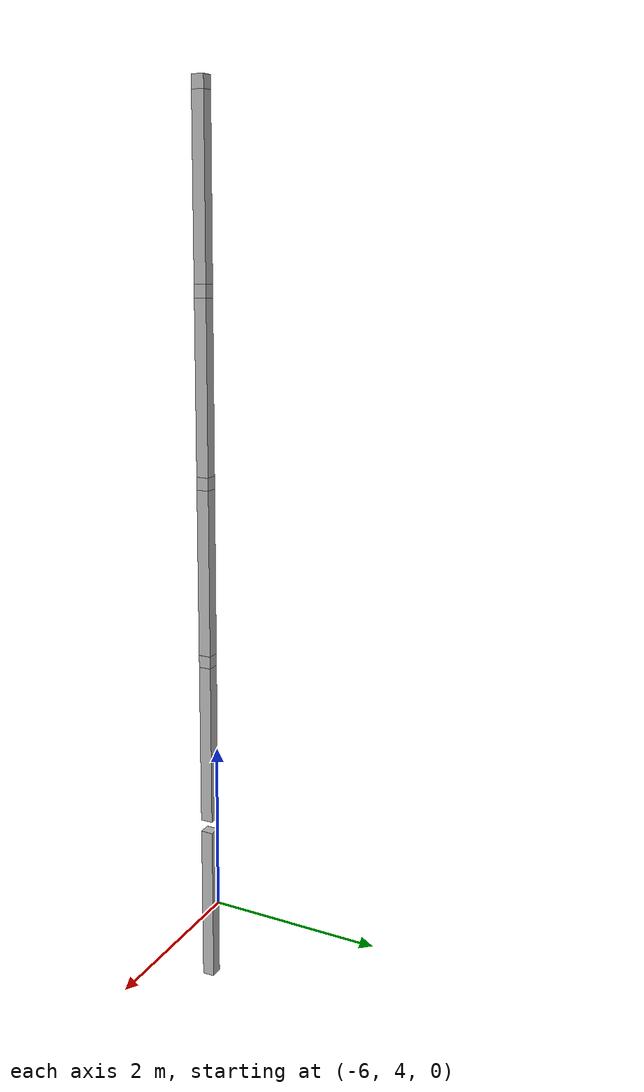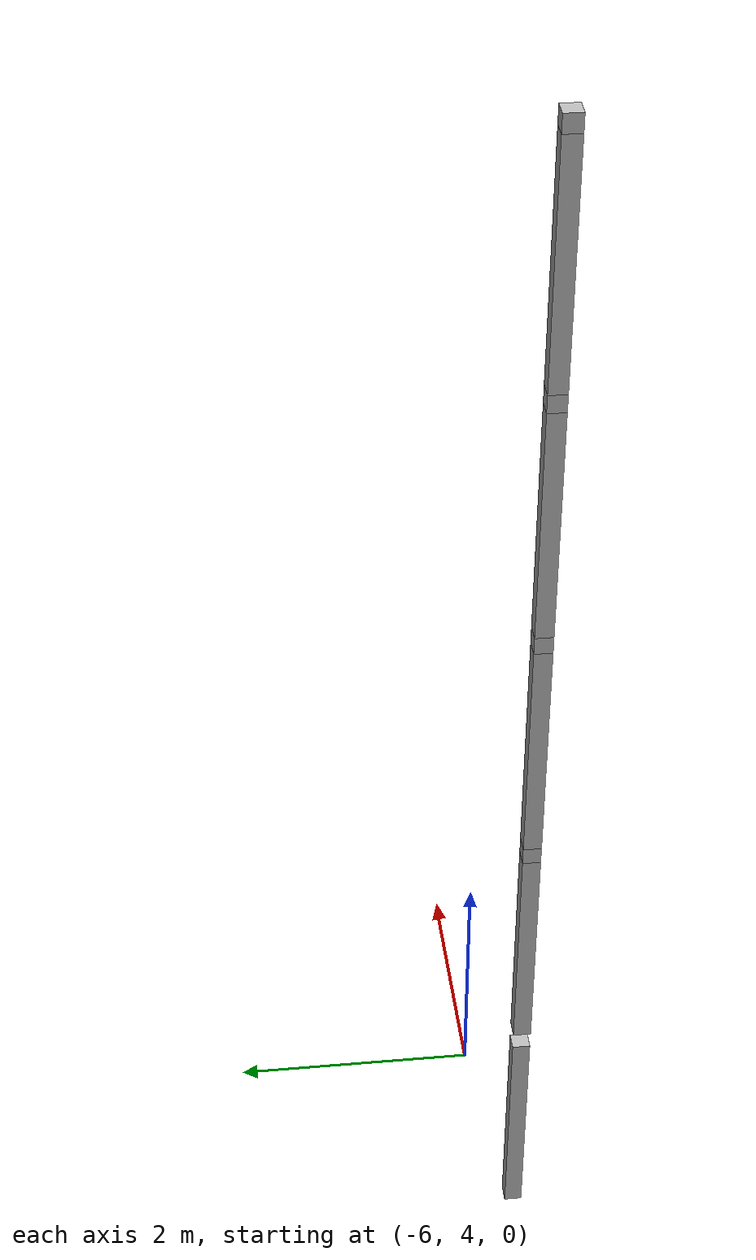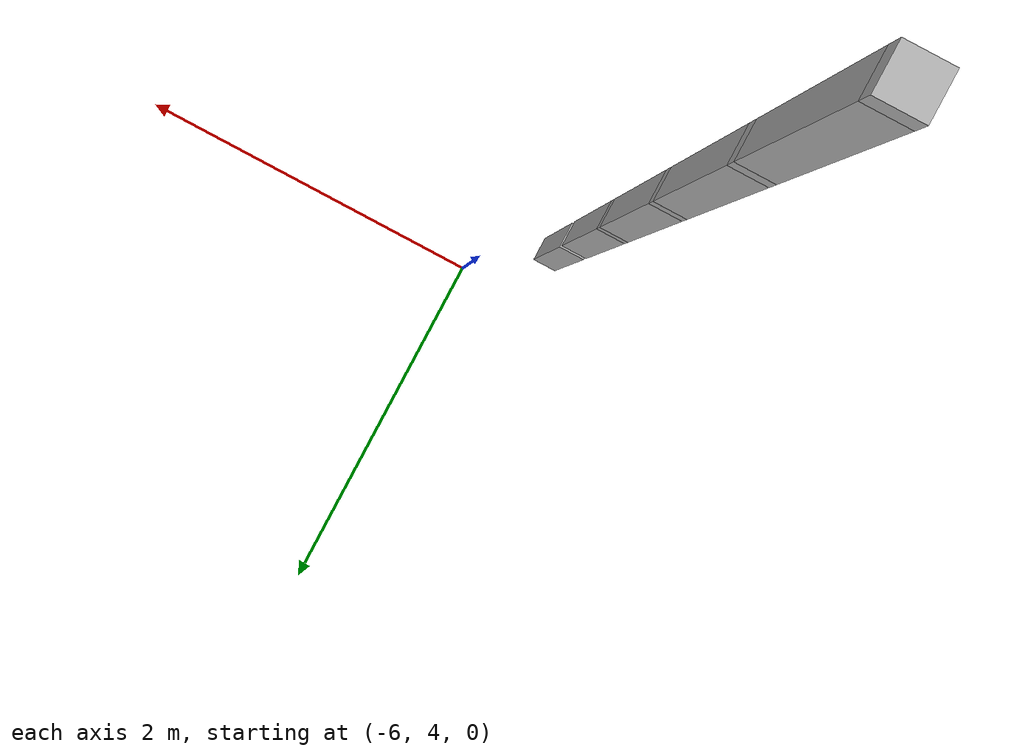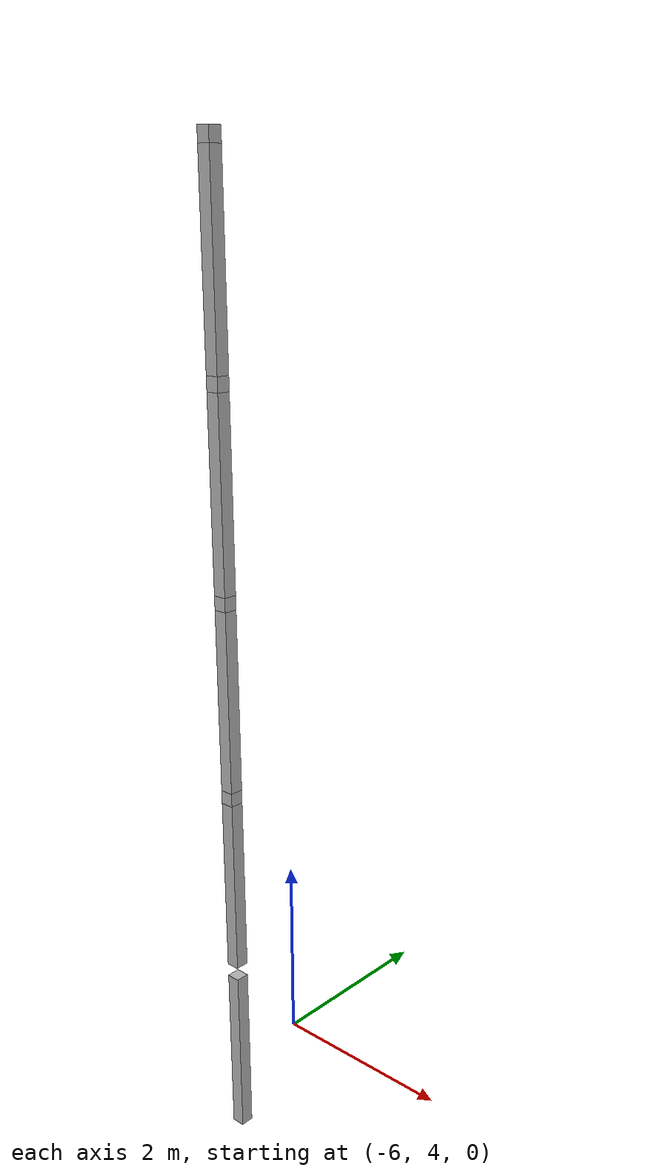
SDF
<sdf version="1.7">
 <world name="default">
  <model name="orthogonal_747_2.000.15_TS">
   <static>1</static>
   <link name="z_link_1_4_0">
    <inertial>
     <mass>1</mass>
     <inertia>
      <ixx>0.166667</ixx>
      <ixy>0</ixy>
      <ixz>0</ixz>
      <iyy>0.166667</iyy>
      <iyz>0</iyz>
      <izz>0.166667</izz>
     </inertia>
    </inertial>
    <pose>0 8.6 2.15 0 -0 0</pose>
    <visual name="visual_0">
     <laser_retro>1506</laser_retro>
     <geometry><box><size>0.15 1e-06 2</size></box></geometry>
     <material>
      <script><name>Gazebo/Grey</name><uri>file://media/materials/scripts/gazebo.material</uri></script>
      <shader type="pixel"><normal_map>__default__</normal_map></shader>
      <ambient>0.678 0.498 0.659 1</ambient>
      <diffuse>0.7 0.7 0.7 1</diffuse>
      <specular>0.01 0.01 0.01 1</specular>
      <emissive>0 0 0 1</emissive>
     </material>
     <pose>0 -0.075 0 0 -0 0</pose>
     <transparency>1</transparency>
    </visual>
    <visual name="visual_1">
     <laser_retro>1507</laser_retro>
     <geometry><box><size>0.15 1e-06 2</size></box></geometry>
     <material>
      <script><name>Gazebo/Grey</name><uri>file://media/materials/scripts/gazebo.material</uri></script>
      <shader type="pixel"><normal_map>__default__</normal_map></shader>
      <ambient>0.447 0.624 0.812 1</ambient>
      <diffuse>0.7 0.7 0.7 1</diffuse>
      <specular>0.01 0.01 0.01 1</specular>
      <emissive>0 0 0 1</emissive>
     </material>
     <pose>0 0.075 0 0 -0 0</pose>
     <transparency>1</transparency>
    </visual>
    <visual name="visual_2">
     <laser_retro>1508</laser_retro>
     <geometry><box><size>0.15 0.15 1e-06</size></box></geometry>
     <material>
      <script><name>Gazebo/Grey</name><uri>file://media/materials/scripts/gazebo.material</uri></script>
      <shader type="pixel"><normal_map>__default__</normal_map></shader>
      <ambient>0.988 0.686 0.243 1</ambient>
      <diffuse>0.7 0.7 0.7 1</diffuse>
      <specular>0.01 0.01 0.01 1</specular>
      <emissive>0 0 0 1</emissive>
     </material>
     <pose>0 0 -1 0 -0 0</pose>
     <transparency>1</transparency>
    </visual>
    <visual name="visual_3">
     <laser_retro>1509</laser_retro>
     <geometry><box><size>1e-06 0.15 2</size></box></geometry>
     <material>
      <script><name>Gazebo/Grey</name><uri>file://media/materials/scripts/gazebo.material</uri></script>
      <shader type="pixel"><normal_map>__default__</normal_map></shader>
      <ambient>0.988 0.914 0.31 1</ambient>
      <diffuse>0.7 0.7 0.7 1</diffuse>
      <specular>0.01 0.01 0.01 1</specular>
      <emissive>0 0 0 1</emissive>
     </material>
     <pose>0.075 0 0 0 -0 0</pose>
     <transparency>1</transparency>
    </visual>
    <visual name="visual_4">
     <laser_retro>1510</laser_retro>
     <geometry><box><size>0.15 0.15 1e-06</size></box></geometry>
     <material>
      <script><name>Gazebo/Grey</name><uri>file://media/materials/scripts/gazebo.material</uri></script>
      <shader type="pixel"><normal_map>__default__</normal_map></shader>
      <ambient>0.937 0.161 0.161 1</ambient>
      <diffuse>0.7 0.7 0.7 1</diffuse>
      <specular>0.01 0.01 0.01 1</specular>
      <emissive>0 0 0 1</emissive>
     </material>
     <pose>0 0 1 0 -0 0</pose>
     <transparency>1</transparency>
    </visual>
    <visual name="visual_5">
     <laser_retro>1511</laser_retro>
     <geometry><box><size>1e-06 0.15 2</size></box></geometry>
     <material>
      <script><name>Gazebo/Grey</name><uri>file://media/materials/scripts/gazebo.material</uri></script>
      <shader type="pixel"><normal_map>__default__</normal_map></shader>
      <ambient>0.541 0.886 0.204 1</ambient>
      <diffuse>0.7 0.7 0.7 1</diffuse>
      <specular>0.01 0.01 0.01 1</specular>
      <emissive>0 0 0 1</emissive>
     </material>
     <pose>-0.075 0 0 0 -0 0</pose>
     <transparency>1</transparency>
    </visual>
    <visual name="visual_texture">
     <geometry><box><size>0.149985 0.149985 1.9998</size></box></geometry>
     <material>
      <script>
       <uri>model://BASE_MODELS/simple_block_v2_textured/materials/scripts</uri>
       <uri>model://BASE_MODELS/simple_block_v2_textured/materials/textures</uri>
       <name>metal</name>
      </script>
     </material>
     <laser_retro>1512</laser_retro>
    </visual>
    <collision name="collision">
     <geometry><box><size>0.15 0.15 2</size></box></geometry>
     <surface>
      <friction>
       <ode><mu>1</mu><mu2>1</mu2><fdir1>0 0 0</fdir1><slip1>0</slip1><slip2>0</slip2></ode>
       <torsional>
        <coefficient>1</coefficient>
        <patch_radius>0</patch_radius>
        <surface_radius>0</surface_radius>
        <use_patch_radius>1</use_patch_radius>
        <ode><slip>0</slip></ode>
       </torsional>
      </friction>
      <bounce><restitution_coefficient>0</restitution_coefficient><threshold>1e+06</threshold></bounce>
      <contact>
       <collide_without_contact>0</collide_without_contact>
       <collide_without_contact_bitmask>1</collide_without_contact_bitmask>
       <collide_bitmask>1</collide_bitmask>
       <ode>
        <soft_cfm>0</soft_cfm>
        <soft_erp>0.2</soft_erp>
        <kp>1e+13</kp>
        <kd>1</kd>
        <max_vel>0.01</max_vel>
        <min_depth>0</min_depth>
       </ode>
       <bullet>
        <split_impulse>1</split_impulse>
        <split_impulse_penetration_threshold>-0.01</split_impulse_penetration_threshold>
        <soft_cfm>0</soft_cfm>
        <soft_erp>0.2</soft_erp>
        <kp>1e+13</kp>
        <kd>1</kd>
       </bullet>
      </contact>
     </surface>
    </collision>
   </link>
   <link name="u_link_2_4_0">
    <inertial>
     <mass>1</mass>
     <inertia>
      <ixx>0.166667</ixx>
      <ixy>0</ixy>
      <ixz>0</ixz>
      <iyy>0.166667</iyy>
      <iyz>0</iyz>
      <izz>0.166667</izz>
     </inertia>
    </inertial>
    <pose>0 8.6 5.375 0 -0 0</pose>
    <visual name="visual_0">
     <laser_retro>2402</laser_retro>
     <geometry><box><size>0.15 1e-06 0.15</size></box></geometry>
     <material>
      <script><name>Gazebo/Grey</name><uri>file://media/materials/scripts/gazebo.material</uri></script>
      <shader type="pixel"><normal_map>__default__</normal_map></shader>
      <ambient>0.678 0.498 0.659 1</ambient>
      <diffuse>0.7 0.7 0.7 1</diffuse>
      <specular>0.01 0.01 0.01 1</specular>
      <emissive>0 0 0 1</emissive>
     </material>
     <pose>0 -0.075 0 0 -0 0</pose>
     <transparency>1</transparency>
    </visual>
    <visual name="visual_1">
     <laser_retro>2403</laser_retro>
     <geometry><box><size>0.15 1e-06 0.15</size></box></geometry>
     <material>
      <script><name>Gazebo/Grey</name><uri>file://media/materials/scripts/gazebo.material</uri></script>
      <shader type="pixel"><normal_map>__default__</normal_map></shader>
      <ambient>0.447 0.624 0.812 1</ambient>
      <diffuse>0.7 0.7 0.7 1</diffuse>
      <specular>0.01 0.01 0.01 1</specular>
      <emissive>0 0 0 1</emissive>
     </material>
     <pose>0 0.075 0 0 -0 0</pose>
     <transparency>1</transparency>
    </visual>
    <visual name="visual_2">
     <laser_retro>2404</laser_retro>
     <geometry><box><size>0.15 0.15 1e-06</size></box></geometry>
     <material>
      <script><name>Gazebo/Grey</name><uri>file://media/materials/scripts/gazebo.material</uri></script>
      <shader type="pixel"><normal_map>__default__</normal_map></shader>
      <ambient>0.988 0.686 0.243 1</ambient>
      <diffuse>0.7 0.7 0.7 1</diffuse>
      <specular>0.01 0.01 0.01 1</specular>
      <emissive>0 0 0 1</emissive>
     </material>
     <pose>0 0 -0.075 0 -0 0</pose>
     <transparency>1</transparency>
    </visual>
    <visual name="visual_3">
     <laser_retro>2405</laser_retro>
     <geometry><box><size>1e-06 0.15 0.15</size></box></geometry>
     <material>
      <script><name>Gazebo/Grey</name><uri>file://media/materials/scripts/gazebo.material</uri></script>
      <shader type="pixel"><normal_map>__default__</normal_map></shader>
      <ambient>0.988 0.914 0.31 1</ambient>
      <diffuse>0.7 0.7 0.7 1</diffuse>
      <specular>0.01 0.01 0.01 1</specular>
      <emissive>0 0 0 1</emissive>
     </material>
     <pose>0.075 0 0 0 -0 0</pose>
     <transparency>1</transparency>
    </visual>
    <visual name="visual_4">
     <laser_retro>2406</laser_retro>
     <geometry><box><size>0.15 0.15 1e-06</size></box></geometry>
     <material>
      <script><name>Gazebo/Grey</name><uri>file://media/materials/scripts/gazebo.material</uri></script>
      <shader type="pixel"><normal_map>__default__</normal_map></shader>
      <ambient>0.937 0.161 0.161 1</ambient>
      <diffuse>0.7 0.7 0.7 1</diffuse>
      <specular>0.01 0.01 0.01 1</specular>
      <emissive>0 0 0 1</emissive>
     </material>
     <pose>0 0 0.075 0 -0 0</pose>
     <transparency>1</transparency>
    </visual>
    <visual name="visual_5">
     <laser_retro>2407</laser_retro>
     <geometry><box><size>1e-06 0.15 0.15</size></box></geometry>
     <material>
      <script><name>Gazebo/Grey</name><uri>file://media/materials/scripts/gazebo.material</uri></script>
      <shader type="pixel"><normal_map>__default__</normal_map></shader>
      <ambient>0.541 0.886 0.204 1</ambient>
      <diffuse>0.7 0.7 0.7 1</diffuse>
      <specular>0.01 0.01 0.01 1</specular>
      <emissive>0 0 0 1</emissive>
     </material>
     <pose>-0.075 0 0 0 -0 0</pose>
     <transparency>1</transparency>
    </visual>
    <visual name="visual_texture">
     <geometry><box><size>0.149985 0.149985 0.149985</size></box></geometry>
     <material>
      <script>
       <uri>model://BASE_MODELS/simple_block_v2_textured/materials/scripts</uri>
       <uri>model://BASE_MODELS/simple_block_v2_textured/materials/textures</uri>
       <name>metal</name>
      </script>
     </material>
     <laser_retro>2408</laser_retro>
    </visual>
    <collision name="collision">
     <geometry><box><size>0.15 0.15 0.15</size></box></geometry>
     <surface>
      <friction>
       <ode><mu>1</mu><mu2>1</mu2><fdir1>0 0 0</fdir1><slip1>0</slip1><slip2>0</slip2></ode>
       <torsional>
        <coefficient>1</coefficient>
        <patch_radius>0</patch_radius>
        <surface_radius>0</surface_radius>
        <use_patch_radius>1</use_patch_radius>
        <ode><slip>0</slip></ode>
       </torsional>
      </friction>
      <bounce><restitution_coefficient>0</restitution_coefficient><threshold>1e+06</threshold></bounce>
      <contact>
       <collide_without_contact>0</collide_without_contact>
       <collide_without_contact_bitmask>1</collide_without_contact_bitmask>
       <collide_bitmask>1</collide_bitmask>
       <ode>
        <soft_cfm>0</soft_cfm>
        <soft_erp>0.2</soft_erp>
        <kp>1e+13</kp>
        <kd>1</kd>
        <max_vel>0.01</max_vel>
        <min_depth>0</min_depth>
       </ode>
       <bullet>
        <split_impulse>1</split_impulse>
        <split_impulse_penetration_threshold>-0.01</split_impulse_penetration_threshold>
        <soft_cfm>0</soft_cfm>
        <soft_erp>0.2</soft_erp>
        <kp>1e+13</kp>
        <kd>1</kd>
       </bullet>
      </contact>
     </surface>
    </collision>
   </link>
   <link name="z_link_2_4_0">
    <inertial>
     <mass>1</mass>
     <inertia>
      <ixx>0.166667</ixx>
      <ixy>0</ixy>
      <ixz>0</ixz>
      <iyy>0.166667</iyy>
      <iyz>0</iyz>
      <izz>0.166667</izz>
     </inertia>
    </inertial>
    <pose>0 8.6 4.3 0 -0 0</pose>
    <visual name="visual_0">
     <laser_retro>2409</laser_retro>
     <geometry><box><size>0.15 1e-06 2</size></box></geometry>
     <material>
      <script><name>Gazebo/Grey</name><uri>file://media/materials/scripts/gazebo.material</uri></script>
      <shader type="pixel"><normal_map>__default__</normal_map></shader>
      <ambient>0.678 0.498 0.659 1</ambient>
      <diffuse>0.7 0.7 0.7 1</diffuse>
      <specular>0.01 0.01 0.01 1</specular>
      <emissive>0 0 0 1</emissive>
     </material>
     <pose>0 -0.075 0 0 -0 0</pose>
     <transparency>1</transparency>
    </visual>
    <visual name="visual_1">
     <laser_retro>2410</laser_retro>
     <geometry><box><size>0.15 1e-06 2</size></box></geometry>
     <material>
      <script><name>Gazebo/Grey</name><uri>file://media/materials/scripts/gazebo.material</uri></script>
      <shader type="pixel"><normal_map>__default__</normal_map></shader>
      <ambient>0.447 0.624 0.812 1</ambient>
      <diffuse>0.7 0.7 0.7 1</diffuse>
      <specular>0.01 0.01 0.01 1</specular>
      <emissive>0 0 0 1</emissive>
     </material>
     <pose>0 0.075 0 0 -0 0</pose>
     <transparency>1</transparency>
    </visual>
    <visual name="visual_2">
     <laser_retro>2411</laser_retro>
     <geometry><box><size>0.15 0.15 1e-06</size></box></geometry>
     <material>
      <script><name>Gazebo/Grey</name><uri>file://media/materials/scripts/gazebo.material</uri></script>
      <shader type="pixel"><normal_map>__default__</normal_map></shader>
      <ambient>0.988 0.686 0.243 1</ambient>
      <diffuse>0.7 0.7 0.7 1</diffuse>
      <specular>0.01 0.01 0.01 1</specular>
      <emissive>0 0 0 1</emissive>
     </material>
     <pose>0 0 -1 0 -0 0</pose>
     <transparency>1</transparency>
    </visual>
    <visual name="visual_3">
     <laser_retro>2412</laser_retro>
     <geometry><box><size>1e-06 0.15 2</size></box></geometry>
     <material>
      <script><name>Gazebo/Grey</name><uri>file://media/materials/scripts/gazebo.material</uri></script>
      <shader type="pixel"><normal_map>__default__</normal_map></shader>
      <ambient>0.988 0.914 0.31 1</ambient>
      <diffuse>0.7 0.7 0.7 1</diffuse>
      <specular>0.01 0.01 0.01 1</specular>
      <emissive>0 0 0 1</emissive>
     </material>
     <pose>0.075 0 0 0 -0 0</pose>
     <transparency>1</transparency>
    </visual>
    <visual name="visual_4">
     <laser_retro>2413</laser_retro>
     <geometry><box><size>0.15 0.15 1e-06</size></box></geometry>
     <material>
      <script><name>Gazebo/Grey</name><uri>file://media/materials/scripts/gazebo.material</uri></script>
      <shader type="pixel"><normal_map>__default__</normal_map></shader>
      <ambient>0.937 0.161 0.161 1</ambient>
      <diffuse>0.7 0.7 0.7 1</diffuse>
      <specular>0.01 0.01 0.01 1</specular>
      <emissive>0 0 0 1</emissive>
     </material>
     <pose>0 0 1 0 -0 0</pose>
     <transparency>1</transparency>
    </visual>
    <visual name="visual_5">
     <laser_retro>2414</laser_retro>
     <geometry><box><size>1e-06 0.15 2</size></box></geometry>
     <material>
      <script><name>Gazebo/Grey</name><uri>file://media/materials/scripts/gazebo.material</uri></script>
      <shader type="pixel"><normal_map>__default__</normal_map></shader>
      <ambient>0.541 0.886 0.204 1</ambient>
      <diffuse>0.7 0.7 0.7 1</diffuse>
      <specular>0.01 0.01 0.01 1</specular>
      <emissive>0 0 0 1</emissive>
     </material>
     <pose>-0.075 0 0 0 -0 0</pose>
     <transparency>1</transparency>
    </visual>
    <visual name="visual_texture">
     <geometry><box><size>0.149985 0.149985 1.9998</size></box></geometry>
     <material>
      <script>
       <uri>model://BASE_MODELS/simple_block_v2_textured/materials/scripts</uri>
       <uri>model://BASE_MODELS/simple_block_v2_textured/materials/textures</uri>
       <name>metal</name>
      </script>
     </material>
     <laser_retro>2415</laser_retro>
    </visual>
    <collision name="collision">
     <geometry><box><size>0.15 0.15 2</size></box></geometry>
     <surface>
      <friction>
       <ode><mu>1</mu><mu2>1</mu2><fdir1>0 0 0</fdir1><slip1>0</slip1><slip2>0</slip2></ode>
       <torsional>
        <coefficient>1</coefficient>
        <patch_radius>0</patch_radius>
        <surface_radius>0</surface_radius>
        <use_patch_radius>1</use_patch_radius>
        <ode><slip>0</slip></ode>
       </torsional>
      </friction>
      <bounce><restitution_coefficient>0</restitution_coefficient><threshold>1e+06</threshold></bounce>
      <contact>
       <collide_without_contact>0</collide_without_contact>
       <collide_without_contact_bitmask>1</collide_without_contact_bitmask>
       <collide_bitmask>1</collide_bitmask>
       <ode>
        <soft_cfm>0</soft_cfm>
        <soft_erp>0.2</soft_erp>
        <kp>1e+13</kp>
        <kd>1</kd>
        <max_vel>0.01</max_vel>
        <min_depth>0</min_depth>
       </ode>
       <bullet>
        <split_impulse>1</split_impulse>
        <split_impulse_penetration_threshold>-0.01</split_impulse_penetration_threshold>
        <soft_cfm>0</soft_cfm>
        <soft_erp>0.2</soft_erp>
        <kp>1e+13</kp>
        <kd>1</kd>
       </bullet>
      </contact>
     </surface>
    </collision>
   </link>
   <link name="u_link_3_4_0">
    <inertial>
     <mass>1</mass>
     <inertia>
      <ixx>0.166667</ixx>
      <ixy>0</ixy>
      <ixz>0</ixz>
      <iyy>0.166667</iyy>
      <iyz>0</iyz>
      <izz>0.166667</izz>
     </inertia>
    </inertial>
    <pose>0 8.6 7.525 0 -0 0</pose>
    <visual name="visual_0">
     <laser_retro>3305</laser_retro>
     <geometry><box><size>0.15 1e-06 0.15</size></box></geometry>
     <material>
      <script><name>Gazebo/Grey</name><uri>file://media/materials/scripts/gazebo.material</uri></script>
      <shader type="pixel"><normal_map>__default__</normal_map></shader>
      <ambient>0.678 0.498 0.659 1</ambient>
      <diffuse>0.7 0.7 0.7 1</diffuse>
      <specular>0.01 0.01 0.01 1</specular>
      <emissive>0 0 0 1</emissive>
     </material>
     <pose>0 -0.075 0 0 -0 0</pose>
     <transparency>1</transparency>
    </visual>
    <visual name="visual_1">
     <laser_retro>3306</laser_retro>
     <geometry><box><size>0.15 1e-06 0.15</size></box></geometry>
     <material>
      <script><name>Gazebo/Grey</name><uri>file://media/materials/scripts/gazebo.material</uri></script>
      <shader type="pixel"><normal_map>__default__</normal_map></shader>
      <ambient>0.447 0.624 0.812 1</ambient>
      <diffuse>0.7 0.7 0.7 1</diffuse>
      <specular>0.01 0.01 0.01 1</specular>
      <emissive>0 0 0 1</emissive>
     </material>
     <pose>0 0.075 0 0 -0 0</pose>
     <transparency>1</transparency>
    </visual>
    <visual name="visual_2">
     <laser_retro>3307</laser_retro>
     <geometry><box><size>0.15 0.15 1e-06</size></box></geometry>
     <material>
      <script><name>Gazebo/Grey</name><uri>file://media/materials/scripts/gazebo.material</uri></script>
      <shader type="pixel"><normal_map>__default__</normal_map></shader>
      <ambient>0.988 0.686 0.243 1</ambient>
      <diffuse>0.7 0.7 0.7 1</diffuse>
      <specular>0.01 0.01 0.01 1</specular>
      <emissive>0 0 0 1</emissive>
     </material>
     <pose>0 0 -0.075 0 -0 0</pose>
     <transparency>1</transparency>
    </visual>
    <visual name="visual_3">
     <laser_retro>3308</laser_retro>
     <geometry><box><size>1e-06 0.15 0.15</size></box></geometry>
     <material>
      <script><name>Gazebo/Grey</name><uri>file://media/materials/scripts/gazebo.material</uri></script>
      <shader type="pixel"><normal_map>__default__</normal_map></shader>
      <ambient>0.988 0.914 0.31 1</ambient>
      <diffuse>0.7 0.7 0.7 1</diffuse>
      <specular>0.01 0.01 0.01 1</specular>
      <emissive>0 0 0 1</emissive>
     </material>
     <pose>0.075 0 0 0 -0 0</pose>
     <transparency>1</transparency>
    </visual>
    <visual name="visual_4">
     <laser_retro>3309</laser_retro>
     <geometry><box><size>0.15 0.15 1e-06</size></box></geometry>
     <material>
      <script><name>Gazebo/Grey</name><uri>file://media/materials/scripts/gazebo.material</uri></script>
      <shader type="pixel"><normal_map>__default__</normal_map></shader>
      <ambient>0.937 0.161 0.161 1</ambient>
      <diffuse>0.7 0.7 0.7 1</diffuse>
      <specular>0.01 0.01 0.01 1</specular>
      <emissive>0 0 0 1</emissive>
     </material>
     <pose>0 0 0.075 0 -0 0</pose>
     <transparency>1</transparency>
    </visual>
    <visual name="visual_5">
     <laser_retro>3310</laser_retro>
     <geometry><box><size>1e-06 0.15 0.15</size></box></geometry>
     <material>
      <script><name>Gazebo/Grey</name><uri>file://media/materials/scripts/gazebo.material</uri></script>
      <shader type="pixel"><normal_map>__default__</normal_map></shader>
      <ambient>0.541 0.886 0.204 1</ambient>
      <diffuse>0.7 0.7 0.7 1</diffuse>
      <specular>0.01 0.01 0.01 1</specular>
      <emissive>0 0 0 1</emissive>
     </material>
     <pose>-0.075 0 0 0 -0 0</pose>
     <transparency>1</transparency>
    </visual>
    <visual name="visual_texture">
     <geometry><box><size>0.149985 0.149985 0.149985</size></box></geometry>
     <material>
      <script>
       <uri>model://BASE_MODELS/simple_block_v2_textured/materials/scripts</uri>
       <uri>model://BASE_MODELS/simple_block_v2_textured/materials/textures</uri>
       <name>metal</name>
      </script>
     </material>
     <laser_retro>3311</laser_retro>
    </visual>
    <collision name="collision">
     <geometry><box><size>0.15 0.15 0.15</size></box></geometry>
     <surface>
      <friction>
       <ode><mu>1</mu><mu2>1</mu2><fdir1>0 0 0</fdir1><slip1>0</slip1><slip2>0</slip2></ode>
       <torsional>
        <coefficient>1</coefficient>
        <patch_radius>0</patch_radius>
        <surface_radius>0</surface_radius>
        <use_patch_radius>1</use_patch_radius>
        <ode><slip>0</slip></ode>
       </torsional>
      </friction>
      <bounce><restitution_coefficient>0</restitution_coefficient><threshold>1e+06</threshold></bounce>
      <contact>
       <collide_without_contact>0</collide_without_contact>
       <collide_without_contact_bitmask>1</collide_without_contact_bitmask>
       <collide_bitmask>1</collide_bitmask>
       <ode>
        <soft_cfm>0</soft_cfm>
        <soft_erp>0.2</soft_erp>
        <kp>1e+13</kp>
        <kd>1</kd>
        <max_vel>0.01</max_vel>
        <min_depth>0</min_depth>
       </ode>
       <bullet>
        <split_impulse>1</split_impulse>
        <split_impulse_penetration_threshold>-0.01</split_impulse_penetration_threshold>
        <soft_cfm>0</soft_cfm>
        <soft_erp>0.2</soft_erp>
        <kp>1e+13</kp>
        <kd>1</kd>
       </bullet>
      </contact>
     </surface>
    </collision>
   </link>
   <link name="z_link_3_4_0">
    <inertial>
     <mass>1</mass>
     <inertia>
      <ixx>0.166667</ixx>
      <ixy>0</ixy>
      <ixz>0</ixz>
      <iyy>0.166667</iyy>
      <iyz>0</iyz>
      <izz>0.166667</izz>
     </inertia>
    </inertial>
    <pose>0 8.6 6.45 0 -0 0</pose>
    <visual name="visual_0">
     <laser_retro>3312</laser_retro>
     <geometry><box><size>0.15 1e-06 2</size></box></geometry>
     <material>
      <script><name>Gazebo/Grey</name><uri>file://media/materials/scripts/gazebo.material</uri></script>
      <shader type="pixel"><normal_map>__default__</normal_map></shader>
      <ambient>0.678 0.498 0.659 1</ambient>
      <diffuse>0.7 0.7 0.7 1</diffuse>
      <specular>0.01 0.01 0.01 1</specular>
      <emissive>0 0 0 1</emissive>
     </material>
     <pose>0 -0.075 0 0 -0 0</pose>
     <transparency>1</transparency>
    </visual>
    <visual name="visual_1">
     <laser_retro>3313</laser_retro>
     <geometry><box><size>0.15 1e-06 2</size></box></geometry>
     <material>
      <script><name>Gazebo/Grey</name><uri>file://media/materials/scripts/gazebo.material</uri></script>
      <shader type="pixel"><normal_map>__default__</normal_map></shader>
      <ambient>0.447 0.624 0.812 1</ambient>
      <diffuse>0.7 0.7 0.7 1</diffuse>
      <specular>0.01 0.01 0.01 1</specular>
      <emissive>0 0 0 1</emissive>
     </material>
     <pose>0 0.075 0 0 -0 0</pose>
     <transparency>1</transparency>
    </visual>
    <visual name="visual_2">
     <laser_retro>3314</laser_retro>
     <geometry><box><size>0.15 0.15 1e-06</size></box></geometry>
     <material>
      <script><name>Gazebo/Grey</name><uri>file://media/materials/scripts/gazebo.material</uri></script>
      <shader type="pixel"><normal_map>__default__</normal_map></shader>
      <ambient>0.988 0.686 0.243 1</ambient>
      <diffuse>0.7 0.7 0.7 1</diffuse>
      <specular>0.01 0.01 0.01 1</specular>
      <emissive>0 0 0 1</emissive>
     </material>
     <pose>0 0 -1 0 -0 0</pose>
     <transparency>1</transparency>
    </visual>
    <visual name="visual_3">
     <laser_retro>3315</laser_retro>
     <geometry><box><size>1e-06 0.15 2</size></box></geometry>
     <material>
      <script><name>Gazebo/Grey</name><uri>file://media/materials/scripts/gazebo.material</uri></script>
      <shader type="pixel"><normal_map>__default__</normal_map></shader>
      <ambient>0.988 0.914 0.31 1</ambient>
      <diffuse>0.7 0.7 0.7 1</diffuse>
      <specular>0.01 0.01 0.01 1</specular>
      <emissive>0 0 0 1</emissive>
     </material>
     <pose>0.075 0 0 0 -0 0</pose>
     <transparency>1</transparency>
    </visual>
    <visual name="visual_4">
     <laser_retro>3316</laser_retro>
     <geometry><box><size>0.15 0.15 1e-06</size></box></geometry>
     <material>
      <script><name>Gazebo/Grey</name><uri>file://media/materials/scripts/gazebo.material</uri></script>
      <shader type="pixel"><normal_map>__default__</normal_map></shader>
      <ambient>0.937 0.161 0.161 1</ambient>
      <diffuse>0.7 0.7 0.7 1</diffuse>
      <specular>0.01 0.01 0.01 1</specular>
      <emissive>0 0 0 1</emissive>
     </material>
     <pose>0 0 1 0 -0 0</pose>
     <transparency>1</transparency>
    </visual>
    <visual name="visual_5">
     <laser_retro>3317</laser_retro>
     <geometry><box><size>1e-06 0.15 2</size></box></geometry>
     <material>
      <script><name>Gazebo/Grey</name><uri>file://media/materials/scripts/gazebo.material</uri></script>
      <shader type="pixel"><normal_map>__default__</normal_map></shader>
      <ambient>0.541 0.886 0.204 1</ambient>
      <diffuse>0.7 0.7 0.7 1</diffuse>
      <specular>0.01 0.01 0.01 1</specular>
      <emissive>0 0 0 1</emissive>
     </material>
     <pose>-0.075 0 0 0 -0 0</pose>
     <transparency>1</transparency>
    </visual>
    <visual name="visual_texture">
     <geometry><box><size>0.149985 0.149985 1.9998</size></box></geometry>
     <material>
      <script>
       <uri>model://BASE_MODELS/simple_block_v2_textured/materials/scripts</uri>
       <uri>model://BASE_MODELS/simple_block_v2_textured/materials/textures</uri>
       <name>metal</name>
      </script>
     </material>
     <laser_retro>3318</laser_retro>
    </visual>
    <collision name="collision">
     <geometry><box><size>0.15 0.15 2</size></box></geometry>
     <surface>
      <friction>
       <ode><mu>1</mu><mu2>1</mu2><fdir1>0 0 0</fdir1><slip1>0</slip1><slip2>0</slip2></ode>
       <torsional>
        <coefficient>1</coefficient>
        <patch_radius>0</patch_radius>
        <surface_radius>0</surface_radius>
        <use_patch_radius>1</use_patch_radius>
        <ode><slip>0</slip></ode>
       </torsional>
      </friction>
      <bounce><restitution_coefficient>0</restitution_coefficient><threshold>1e+06</threshold></bounce>
      <contact>
       <collide_without_contact>0</collide_without_contact>
       <collide_without_contact_bitmask>1</collide_without_contact_bitmask>
       <collide_bitmask>1</collide_bitmask>
       <ode>
        <soft_cfm>0</soft_cfm>
        <soft_erp>0.2</soft_erp>
        <kp>1e+13</kp>
        <kd>1</kd>
        <max_vel>0.01</max_vel>
        <min_depth>0</min_depth>
       </ode>
       <bullet>
        <split_impulse>1</split_impulse>
        <split_impulse_penetration_threshold>-0.01</split_impulse_penetration_threshold>
        <soft_cfm>0</soft_cfm>
        <soft_erp>0.2</soft_erp>
        <kp>1e+13</kp>
        <kd>1</kd>
       </bullet>
      </contact>
     </surface>
    </collision>
   </link>
   <link name="u_link_4_4_0">
    <inertial>
     <mass>1</mass>
     <inertia>
      <ixx>0.166667</ixx>
      <ixy>0</ixy>
      <ixz>0</ixz>
      <iyy>0.166667</iyy>
      <iyz>0</iyz>
      <izz>0.166667</izz>
     </inertia>
    </inertial>
    <pose>0 8.6 9.675 0 -0 0</pose>
    <visual name="visual_0">
     <laser_retro>4208</laser_retro>
     <geometry><box><size>0.15 1e-06 0.15</size></box></geometry>
     <material>
      <script><name>Gazebo/Grey</name><uri>file://media/materials/scripts/gazebo.material</uri></script>
      <shader type="pixel"><normal_map>__default__</normal_map></shader>
      <ambient>0.678 0.498 0.659 1</ambient>
      <diffuse>0.7 0.7 0.7 1</diffuse>
      <specular>0.01 0.01 0.01 1</specular>
      <emissive>0 0 0 1</emissive>
     </material>
     <pose>0 -0.075 0 0 -0 0</pose>
     <transparency>1</transparency>
    </visual>
    <visual name="visual_1">
     <laser_retro>4209</laser_retro>
     <geometry><box><size>0.15 1e-06 0.15</size></box></geometry>
     <material>
      <script><name>Gazebo/Grey</name><uri>file://media/materials/scripts/gazebo.material</uri></script>
      <shader type="pixel"><normal_map>__default__</normal_map></shader>
      <ambient>0.447 0.624 0.812 1</ambient>
      <diffuse>0.7 0.7 0.7 1</diffuse>
      <specular>0.01 0.01 0.01 1</specular>
      <emissive>0 0 0 1</emissive>
     </material>
     <pose>0 0.075 0 0 -0 0</pose>
     <transparency>1</transparency>
    </visual>
    <visual name="visual_2">
     <laser_retro>4210</laser_retro>
     <geometry><box><size>0.15 0.15 1e-06</size></box></geometry>
     <material>
      <script><name>Gazebo/Grey</name><uri>file://media/materials/scripts/gazebo.material</uri></script>
      <shader type="pixel"><normal_map>__default__</normal_map></shader>
      <ambient>0.988 0.686 0.243 1</ambient>
      <diffuse>0.7 0.7 0.7 1</diffuse>
      <specular>0.01 0.01 0.01 1</specular>
      <emissive>0 0 0 1</emissive>
     </material>
     <pose>0 0 -0.075 0 -0 0</pose>
     <transparency>1</transparency>
    </visual>
    <visual name="visual_3">
     <laser_retro>4211</laser_retro>
     <geometry><box><size>1e-06 0.15 0.15</size></box></geometry>
     <material>
      <script><name>Gazebo/Grey</name><uri>file://media/materials/scripts/gazebo.material</uri></script>
      <shader type="pixel"><normal_map>__default__</normal_map></shader>
      <ambient>0.988 0.914 0.31 1</ambient>
      <diffuse>0.7 0.7 0.7 1</diffuse>
      <specular>0.01 0.01 0.01 1</specular>
      <emissive>0 0 0 1</emissive>
     </material>
     <pose>0.075 0 0 0 -0 0</pose>
     <transparency>1</transparency>
    </visual>
    <visual name="visual_4">
     <laser_retro>4212</laser_retro>
     <geometry><box><size>0.15 0.15 1e-06</size></box></geometry>
     <material>
      <script><name>Gazebo/Grey</name><uri>file://media/materials/scripts/gazebo.material</uri></script>
      <shader type="pixel"><normal_map>__default__</normal_map></shader>
      <ambient>0.937 0.161 0.161 1</ambient>
      <diffuse>0.7 0.7 0.7 1</diffuse>
      <specular>0.01 0.01 0.01 1</specular>
      <emissive>0 0 0 1</emissive>
     </material>
     <pose>0 0 0.075 0 -0 0</pose>
     <transparency>1</transparency>
    </visual>
    <visual name="visual_5">
     <laser_retro>4213</laser_retro>
     <geometry><box><size>1e-06 0.15 0.15</size></box></geometry>
     <material>
      <script><name>Gazebo/Grey</name><uri>file://media/materials/scripts/gazebo.material</uri></script>
      <shader type="pixel"><normal_map>__default__</normal_map></shader>
      <ambient>0.541 0.886 0.204 1</ambient>
      <diffuse>0.7 0.7 0.7 1</diffuse>
      <specular>0.01 0.01 0.01 1</specular>
      <emissive>0 0 0 1</emissive>
     </material>
     <pose>-0.075 0 0 0 -0 0</pose>
     <transparency>1</transparency>
    </visual>
    <visual name="visual_texture">
     <geometry><box><size>0.149985 0.149985 0.149985</size></box></geometry>
     <material>
      <script>
       <uri>model://BASE_MODELS/simple_block_v2_textured/materials/scripts</uri>
       <uri>model://BASE_MODELS/simple_block_v2_textured/materials/textures</uri>
       <name>metal</name>
      </script>
     </material>
     <laser_retro>4214</laser_retro>
    </visual>
    <collision name="collision">
     <geometry><box><size>0.15 0.15 0.15</size></box></geometry>
     <surface>
      <friction>
       <ode><mu>1</mu><mu2>1</mu2><fdir1>0 0 0</fdir1><slip1>0</slip1><slip2>0</slip2></ode>
       <torsional>
        <coefficient>1</coefficient>
        <patch_radius>0</patch_radius>
        <surface_radius>0</surface_radius>
        <use_patch_radius>1</use_patch_radius>
        <ode><slip>0</slip></ode>
       </torsional>
      </friction>
      <bounce><restitution_coefficient>0</restitution_coefficient><threshold>1e+06</threshold></bounce>
      <contact>
       <collide_without_contact>0</collide_without_contact>
       <collide_without_contact_bitmask>1</collide_without_contact_bitmask>
       <collide_bitmask>1</collide_bitmask>
       <ode>
        <soft_cfm>0</soft_cfm>
        <soft_erp>0.2</soft_erp>
        <kp>1e+13</kp>
        <kd>1</kd>
        <max_vel>0.01</max_vel>
        <min_depth>0</min_depth>
       </ode>
       <bullet>
        <split_impulse>1</split_impulse>
        <split_impulse_penetration_threshold>-0.01</split_impulse_penetration_threshold>
        <soft_cfm>0</soft_cfm>
        <soft_erp>0.2</soft_erp>
        <kp>1e+13</kp>
        <kd>1</kd>
       </bullet>
      </contact>
     </surface>
    </collision>
   </link>
   <link name="z_link_4_4_0">
    <inertial>
     <mass>1</mass>
     <inertia>
      <ixx>0.166667</ixx>
      <ixy>0</ixy>
      <ixz>0</ixz>
      <iyy>0.166667</iyy>
      <iyz>0</iyz>
      <izz>0.166667</izz>
     </inertia>
    </inertial>
    <pose>0 8.6 8.6 0 -0 0</pose>
    <visual name="visual_0">
     <laser_retro>4215</laser_retro>
     <geometry><box><size>0.15 1e-06 2</size></box></geometry>
     <material>
      <script><name>Gazebo/Grey</name><uri>file://media/materials/scripts/gazebo.material</uri></script>
      <shader type="pixel"><normal_map>__default__</normal_map></shader>
      <ambient>0.678 0.498 0.659 1</ambient>
      <diffuse>0.7 0.7 0.7 1</diffuse>
      <specular>0.01 0.01 0.01 1</specular>
      <emissive>0 0 0 1</emissive>
     </material>
     <pose>0 -0.075 0 0 -0 0</pose>
     <transparency>1</transparency>
    </visual>
    <visual name="visual_1">
     <laser_retro>4216</laser_retro>
     <geometry><box><size>0.15 1e-06 2</size></box></geometry>
     <material>
      <script><name>Gazebo/Grey</name><uri>file://media/materials/scripts/gazebo.material</uri></script>
      <shader type="pixel"><normal_map>__default__</normal_map></shader>
      <ambient>0.447 0.624 0.812 1</ambient>
      <diffuse>0.7 0.7 0.7 1</diffuse>
      <specular>0.01 0.01 0.01 1</specular>
      <emissive>0 0 0 1</emissive>
     </material>
     <pose>0 0.075 0 0 -0 0</pose>
     <transparency>1</transparency>
    </visual>
    <visual name="visual_2">
     <laser_retro>4217</laser_retro>
     <geometry><box><size>0.15 0.15 1e-06</size></box></geometry>
     <material>
      <script><name>Gazebo/Grey</name><uri>file://media/materials/scripts/gazebo.material</uri></script>
      <shader type="pixel"><normal_map>__default__</normal_map></shader>
      <ambient>0.988 0.686 0.243 1</ambient>
      <diffuse>0.7 0.7 0.7 1</diffuse>
      <specular>0.01 0.01 0.01 1</specular>
      <emissive>0 0 0 1</emissive>
     </material>
     <pose>0 0 -1 0 -0 0</pose>
     <transparency>1</transparency>
    </visual>
    <visual name="visual_3">
     <laser_retro>4218</laser_retro>
     <geometry><box><size>1e-06 0.15 2</size></box></geometry>
     <material>
      <script><name>Gazebo/Grey</name><uri>file://media/materials/scripts/gazebo.material</uri></script>
      <shader type="pixel"><normal_map>__default__</normal_map></shader>
      <ambient>0.988 0.914 0.31 1</ambient>
      <diffuse>0.7 0.7 0.7 1</diffuse>
      <specular>0.01 0.01 0.01 1</specular>
      <emissive>0 0 0 1</emissive>
     </material>
     <pose>0.075 0 0 0 -0 0</pose>
     <transparency>1</transparency>
    </visual>
    <visual name="visual_4">
     <laser_retro>4219</laser_retro>
     <geometry><box><size>0.15 0.15 1e-06</size></box></geometry>
     <material>
      <script><name>Gazebo/Grey</name><uri>file://media/materials/scripts/gazebo.material</uri></script>
      <shader type="pixel"><normal_map>__default__</normal_map></shader>
      <ambient>0.937 0.161 0.161 1</ambient>
      <diffuse>0.7 0.7 0.7 1</diffuse>
      <specular>0.01 0.01 0.01 1</specular>
      <emissive>0 0 0 1</emissive>
     </material>
     <pose>0 0 1 0 -0 0</pose>
     <transparency>1</transparency>
    </visual>
    <visual name="visual_5">
     <laser_retro>4220</laser_retro>
     <geometry><box><size>1e-06 0.15 2</size></box></geometry>
     <material>
      <script><name>Gazebo/Grey</name><uri>file://media/materials/scripts/gazebo.material</uri></script>
      <shader type="pixel"><normal_map>__default__</normal_map></shader>
      <ambient>0.541 0.886 0.204 1</ambient>
      <diffuse>0.7 0.7 0.7 1</diffuse>
      <specular>0.01 0.01 0.01 1</specular>
      <emissive>0 0 0 1</emissive>
     </material>
     <pose>-0.075 0 0 0 -0 0</pose>
     <transparency>1</transparency>
    </visual>
    <visual name="visual_texture">
     <geometry><box><size>0.149985 0.149985 1.9998</size></box></geometry>
     <material>
      <script>
       <uri>model://BASE_MODELS/simple_block_v2_textured/materials/scripts</uri>
       <uri>model://BASE_MODELS/simple_block_v2_textured/materials/textures</uri>
       <name>metal</name>
      </script>
     </material>
     <laser_retro>4221</laser_retro>
    </visual>
    <collision name="collision">
     <geometry><box><size>0.15 0.15 2</size></box></geometry>
     <surface>
      <friction>
       <ode><mu>1</mu><mu2>1</mu2><fdir1>0 0 0</fdir1><slip1>0</slip1><slip2>0</slip2></ode>
       <torsional>
        <coefficient>1</coefficient>
        <patch_radius>0</patch_radius>
        <surface_radius>0</surface_radius>
        <use_patch_radius>1</use_patch_radius>
        <ode><slip>0</slip></ode>
       </torsional>
      </friction>
      <bounce><restitution_coefficient>0</restitution_coefficient><threshold>1e+06</threshold></bounce>
      <contact>
       <collide_without_contact>0</collide_without_contact>
       <collide_without_contact_bitmask>1</collide_without_contact_bitmask>
       <collide_bitmask>1</collide_bitmask>
       <ode>
        <soft_cfm>0</soft_cfm>
        <soft_erp>0.2</soft_erp>
        <kp>1e+13</kp>
        <kd>1</kd>
        <max_vel>0.01</max_vel>
        <min_depth>0</min_depth>
       </ode>
       <bullet>
        <split_impulse>1</split_impulse>
        <split_impulse_penetration_threshold>-0.01</split_impulse_penetration_threshold>
        <soft_cfm>0</soft_cfm>
        <soft_erp>0.2</soft_erp>
        <kp>1e+13</kp>
        <kd>1</kd>
       </bullet>
      </contact>
     </surface>
    </collision>
   </link>
   <link name="u_link_5_4_0">
    <inertial>
     <mass>1</mass>
     <inertia>
      <ixx>0.166667</ixx>
      <ixy>0</ixy>
      <ixz>0</ixz>
      <iyy>0.166667</iyy>
      <iyz>0</iyz>
      <izz>0.166667</izz>
     </inertia>
    </inertial>
    <pose>0 8.6 11.825 0 -0 0</pose>
    <visual name="visual_0">
     <laser_retro>5111</laser_retro>
     <geometry><box><size>0.15 1e-06 0.15</size></box></geometry>
     <material>
      <script><name>Gazebo/Grey</name><uri>file://media/materials/scripts/gazebo.material</uri></script>
      <shader type="pixel"><normal_map>__default__</normal_map></shader>
      <ambient>0.678 0.498 0.659 1</ambient>
      <diffuse>0.7 0.7 0.7 1</diffuse>
      <specular>0.01 0.01 0.01 1</specular>
      <emissive>0 0 0 1</emissive>
     </material>
     <pose>0 -0.075 0 0 -0 0</pose>
     <transparency>1</transparency>
    </visual>
    <visual name="visual_1">
     <laser_retro>5112</laser_retro>
     <geometry><box><size>0.15 1e-06 0.15</size></box></geometry>
     <material>
      <script><name>Gazebo/Grey</name><uri>file://media/materials/scripts/gazebo.material</uri></script>
      <shader type="pixel"><normal_map>__default__</normal_map></shader>
      <ambient>0.447 0.624 0.812 1</ambient>
      <diffuse>0.7 0.7 0.7 1</diffuse>
      <specular>0.01 0.01 0.01 1</specular>
      <emissive>0 0 0 1</emissive>
     </material>
     <pose>0 0.075 0 0 -0 0</pose>
     <transparency>1</transparency>
    </visual>
    <visual name="visual_2">
     <laser_retro>5113</laser_retro>
     <geometry><box><size>0.15 0.15 1e-06</size></box></geometry>
     <material>
      <script><name>Gazebo/Grey</name><uri>file://media/materials/scripts/gazebo.material</uri></script>
      <shader type="pixel"><normal_map>__default__</normal_map></shader>
      <ambient>0.988 0.686 0.243 1</ambient>
      <diffuse>0.7 0.7 0.7 1</diffuse>
      <specular>0.01 0.01 0.01 1</specular>
      <emissive>0 0 0 1</emissive>
     </material>
     <pose>0 0 -0.075 0 -0 0</pose>
     <transparency>1</transparency>
    </visual>
    <visual name="visual_3">
     <laser_retro>5114</laser_retro>
     <geometry><box><size>1e-06 0.15 0.15</size></box></geometry>
     <material>
      <script><name>Gazebo/Grey</name><uri>file://media/materials/scripts/gazebo.material</uri></script>
      <shader type="pixel"><normal_map>__default__</normal_map></shader>
      <ambient>0.988 0.914 0.31 1</ambient>
      <diffuse>0.7 0.7 0.7 1</diffuse>
      <specular>0.01 0.01 0.01 1</specular>
      <emissive>0 0 0 1</emissive>
     </material>
     <pose>0.075 0 0 0 -0 0</pose>
     <transparency>1</transparency>
    </visual>
    <visual name="visual_4">
     <laser_retro>5115</laser_retro>
     <geometry><box><size>0.15 0.15 1e-06</size></box></geometry>
     <material>
      <script><name>Gazebo/Grey</name><uri>file://media/materials/scripts/gazebo.material</uri></script>
      <shader type="pixel"><normal_map>__default__</normal_map></shader>
      <ambient>0.937 0.161 0.161 1</ambient>
      <diffuse>0.7 0.7 0.7 1</diffuse>
      <specular>0.01 0.01 0.01 1</specular>
      <emissive>0 0 0 1</emissive>
     </material>
     <pose>0 0 0.075 0 -0 0</pose>
     <transparency>1</transparency>
    </visual>
    <visual name="visual_5">
     <laser_retro>5116</laser_retro>
     <geometry><box><size>1e-06 0.15 0.15</size></box></geometry>
     <material>
      <script><name>Gazebo/Grey</name><uri>file://media/materials/scripts/gazebo.material</uri></script>
      <shader type="pixel"><normal_map>__default__</normal_map></shader>
      <ambient>0.541 0.886 0.204 1</ambient>
      <diffuse>0.7 0.7 0.7 1</diffuse>
      <specular>0.01 0.01 0.01 1</specular>
      <emissive>0 0 0 1</emissive>
     </material>
     <pose>-0.075 0 0 0 -0 0</pose>
     <transparency>1</transparency>
    </visual>
    <visual name="visual_texture">
     <geometry><box><size>0.149985 0.149985 0.149985</size></box></geometry>
     <material>
      <script>
       <uri>model://BASE_MODELS/simple_block_v2_textured/materials/scripts</uri>
       <uri>model://BASE_MODELS/simple_block_v2_textured/materials/textures</uri>
       <name>metal</name>
      </script>
     </material>
     <laser_retro>5117</laser_retro>
    </visual>
    <collision name="collision">
     <geometry><box><size>0.15 0.15 0.15</size></box></geometry>
     <surface>
      <friction>
       <ode><mu>1</mu><mu2>1</mu2><fdir1>0 0 0</fdir1><slip1>0</slip1><slip2>0</slip2></ode>
       <torsional>
        <coefficient>1</coefficient>
        <patch_radius>0</patch_radius>
        <surface_radius>0</surface_radius>
        <use_patch_radius>1</use_patch_radius>
        <ode><slip>0</slip></ode>
       </torsional>
      </friction>
      <bounce><restitution_coefficient>0</restitution_coefficient><threshold>1e+06</threshold></bounce>
      <contact>
       <collide_without_contact>0</collide_without_contact>
       <collide_without_contact_bitmask>1</collide_without_contact_bitmask>
       <collide_bitmask>1</collide_bitmask>
       <ode>
        <soft_cfm>0</soft_cfm>
        <soft_erp>0.2</soft_erp>
        <kp>1e+13</kp>
        <kd>1</kd>
        <max_vel>0.01</max_vel>
        <min_depth>0</min_depth>
       </ode>
       <bullet>
        <split_impulse>1</split_impulse>
        <split_impulse_penetration_threshold>-0.01</split_impulse_penetration_threshold>
        <soft_cfm>0</soft_cfm>
        <soft_erp>0.2</soft_erp>
        <kp>1e+13</kp>
        <kd>1</kd>
       </bullet>
      </contact>
     </surface>
    </collision>
   </link>
   <link name="z_link_5_4_0">
    <inertial>
     <mass>1</mass>
     <inertia>
      <ixx>0.166667</ixx>
      <ixy>0</ixy>
      <ixz>0</ixz>
      <iyy>0.166667</iyy>
      <iyz>0</iyz>
      <izz>0.166667</izz>
     </inertia>
    </inertial>
    <pose>0 8.6 10.75 0 -0 0</pose>
    <visual name="visual_0">
     <laser_retro>5118</laser_retro>
     <geometry><box><size>0.15 1e-06 2</size></box></geometry>
     <material>
      <script><name>Gazebo/Grey</name><uri>file://media/materials/scripts/gazebo.material</uri></script>
      <shader type="pixel"><normal_map>__default__</normal_map></shader>
      <ambient>0.678 0.498 0.659 1</ambient>
      <diffuse>0.7 0.7 0.7 1</diffuse>
      <specular>0.01 0.01 0.01 1</specular>
      <emissive>0 0 0 1</emissive>
     </material>
     <pose>0 -0.075 0 0 -0 0</pose>
     <transparency>1</transparency>
    </visual>
    <visual name="visual_1">
     <laser_retro>5119</laser_retro>
     <geometry><box><size>0.15 1e-06 2</size></box></geometry>
     <material>
      <script><name>Gazebo/Grey</name><uri>file://media/materials/scripts/gazebo.material</uri></script>
      <shader type="pixel"><normal_map>__default__</normal_map></shader>
      <ambient>0.447 0.624 0.812 1</ambient>
      <diffuse>0.7 0.7 0.7 1</diffuse>
      <specular>0.01 0.01 0.01 1</specular>
      <emissive>0 0 0 1</emissive>
     </material>
     <pose>0 0.075 0 0 -0 0</pose>
     <transparency>1</transparency>
    </visual>
    <visual name="visual_2">
     <laser_retro>5120</laser_retro>
     <geometry><box><size>0.15 0.15 1e-06</size></box></geometry>
     <material>
      <script><name>Gazebo/Grey</name><uri>file://media/materials/scripts/gazebo.material</uri></script>
      <shader type="pixel"><normal_map>__default__</normal_map></shader>
      <ambient>0.988 0.686 0.243 1</ambient>
      <diffuse>0.7 0.7 0.7 1</diffuse>
      <specular>0.01 0.01 0.01 1</specular>
      <emissive>0 0 0 1</emissive>
     </material>
     <pose>0 0 -1 0 -0 0</pose>
     <transparency>1</transparency>
    </visual>
    <visual name="visual_3">
     <laser_retro>5121</laser_retro>
     <geometry><box><size>1e-06 0.15 2</size></box></geometry>
     <material>
      <script><name>Gazebo/Grey</name><uri>file://media/materials/scripts/gazebo.material</uri></script>
      <shader type="pixel"><normal_map>__default__</normal_map></shader>
      <ambient>0.988 0.914 0.31 1</ambient>
      <diffuse>0.7 0.7 0.7 1</diffuse>
      <specular>0.01 0.01 0.01 1</specular>
      <emissive>0 0 0 1</emissive>
     </material>
     <pose>0.075 0 0 0 -0 0</pose>
     <transparency>1</transparency>
    </visual>
    <visual name="visual_4">
     <laser_retro>5122</laser_retro>
     <geometry><box><size>0.15 0.15 1e-06</size></box></geometry>
     <material>
      <script><name>Gazebo/Grey</name><uri>file://media/materials/scripts/gazebo.material</uri></script>
      <shader type="pixel"><normal_map>__default__</normal_map></shader>
      <ambient>0.937 0.161 0.161 1</ambient>
      <diffuse>0.7 0.7 0.7 1</diffuse>
      <specular>0.01 0.01 0.01 1</specular>
      <emissive>0 0 0 1</emissive>
     </material>
     <pose>0 0 1 0 -0 0</pose>
     <transparency>1</transparency>
    </visual>
    <visual name="visual_5">
     <laser_retro>5123</laser_retro>
     <geometry><box><size>1e-06 0.15 2</size></box></geometry>
     <material>
      <script><name>Gazebo/Grey</name><uri>file://media/materials/scripts/gazebo.material</uri></script>
      <shader type="pixel"><normal_map>__default__</normal_map></shader>
      <ambient>0.541 0.886 0.204 1</ambient>
      <diffuse>0.7 0.7 0.7 1</diffuse>
      <specular>0.01 0.01 0.01 1</specular>
      <emissive>0 0 0 1</emissive>
     </material>
     <pose>-0.075 0 0 0 -0 0</pose>
     <transparency>1</transparency>
    </visual>
    <visual name="visual_texture">
     <geometry><box><size>0.149985 0.149985 1.9998</size></box></geometry>
     <material>
      <script>
       <uri>model://BASE_MODELS/simple_block_v2_textured/materials/scripts</uri>
       <uri>model://BASE_MODELS/simple_block_v2_textured/materials/textures</uri>
       <name>metal</name>
      </script>
     </material>
     <laser_retro>5124</laser_retro>
    </visual>
    <collision name="collision">
     <geometry><box><size>0.15 0.15 2</size></box></geometry>
     <surface>
      <friction>
       <ode><mu>1</mu><mu2>1</mu2><fdir1>0 0 0</fdir1><slip1>0</slip1><slip2>0</slip2></ode>
       <torsional>
        <coefficient>1</coefficient>
        <patch_radius>0</patch_radius>
        <surface_radius>0</surface_radius>
        <use_patch_radius>1</use_patch_radius>
        <ode><slip>0</slip></ode>
       </torsional>
      </friction>
      <bounce><restitution_coefficient>0</restitution_coefficient><threshold>1e+06</threshold></bounce>
      <contact>
       <collide_without_contact>0</collide_without_contact>
       <collide_without_contact_bitmask>1</collide_without_contact_bitmask>
       <collide_bitmask>1</collide_bitmask>
       <ode>
        <soft_cfm>0</soft_cfm>
        <soft_erp>0.2</soft_erp>
        <kp>1e+13</kp>
        <kd>1</kd>
        <max_vel>0.01</max_vel>
        <min_depth>0</min_depth>
       </ode>
       <bullet>
        <split_impulse>1</split_impulse>
        <split_impulse_penetration_threshold>-0.01</split_impulse_penetration_threshold>
        <soft_cfm>0</soft_cfm>
        <soft_erp>0.2</soft_erp>
        <kp>1e+13</kp>
        <kd>1</kd>
       </bullet>
      </contact>
     </surface>
    </collision>
   </link>
   <pose>-6.47624 -5 -2.5 0 -0 0</pose>
  </model>
 </world>
</sdf>
